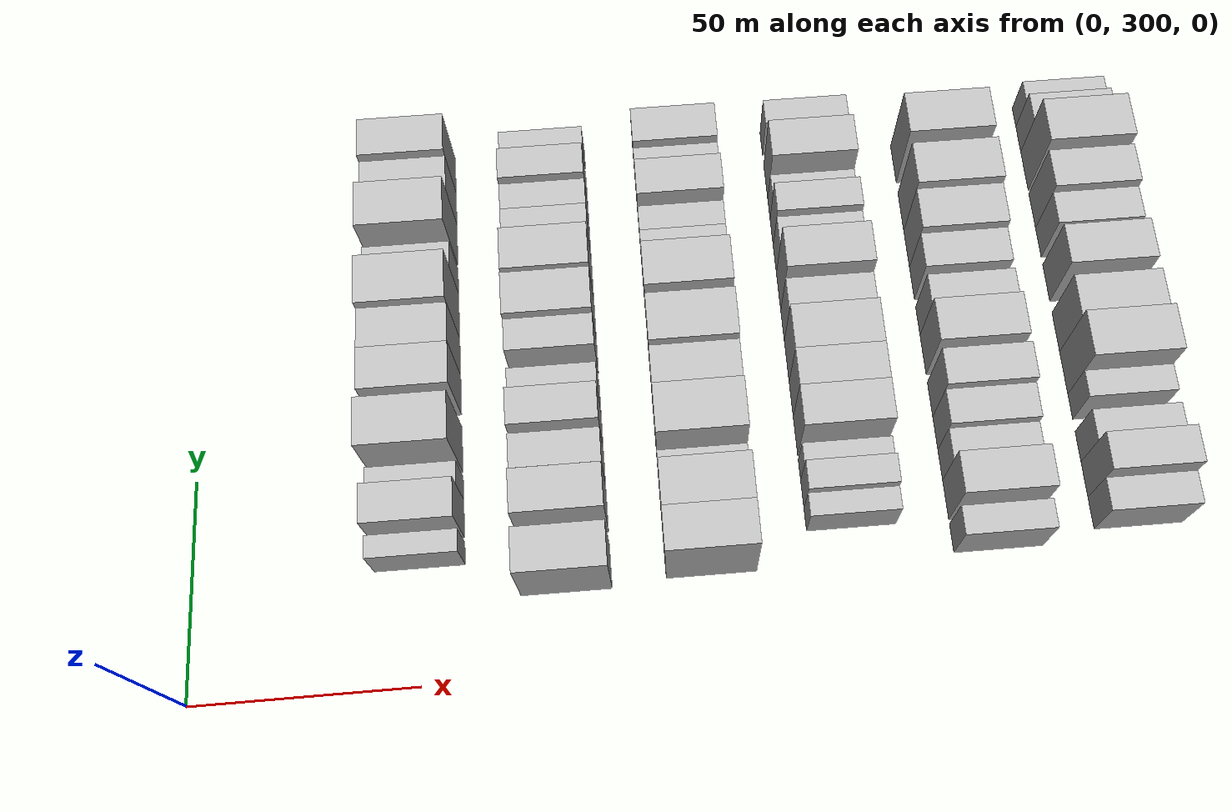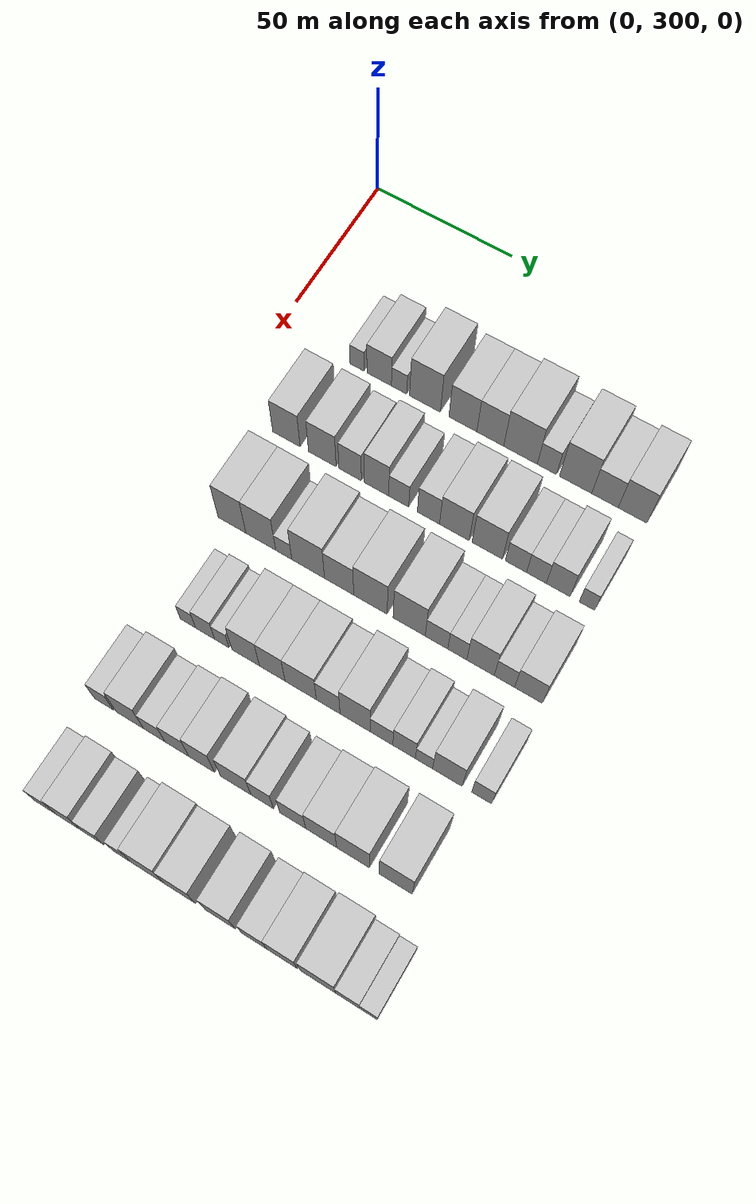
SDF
<sdf version="1.6">
 <world name="default">
  <model name="building_96">
   <static>1</static>
   <pose>50.0000 328.5614 0 0.000000 0.000000 0.000000</pose>
   <link name="link">
    <pose>0 0 6.00 0 0 0</pose>
    <collision name="collision"><geometry><box><size>20.0000 5.0718 12.0000</size></box></geometry></collision>
    <visual name="visual">
     <cast_shadows>0</cast_shadows>
     <geometry><box><size>20.0000 5.0718 12.0000</size></box></geometry>
     <material>
      <script>
       <uri>model://HANNAS_wall/materials/scripts</uri>
       <uri>model://HANNAS_wall/materials/textures</uri>
       <name>vrc/HANNAS_wall</name>
      </script>
     </material>
    </visual>
   </link>
  </model>
  <model name="building_97">
   <static>1</static>
   <pose>50.0000 336.4969 0 0.000000 0.000000 0.000000</pose>
   <link name="link">
    <pose>0 0 9.00 0 0 0</pose>
    <collision name="collision"><geometry><box><size>20.0000 8.7992 18.0000</size></box></geometry></collision>
    <visual name="visual">
     <cast_shadows>0</cast_shadows>
     <geometry><box><size>20.0000 8.7992 18.0000</size></box></geometry>
     <material>
      <script>
       <uri>model://HANNAS_wall/materials/scripts</uri>
       <uri>model://HANNAS_wall/materials/textures</uri>
       <name>vrc/HANNAS_wall</name>
      </script>
     </material>
    </visual>
   </link>
  </model>
  <model name="building_98">
   <static>1</static>
   <pose>50.0000 343.6427 0 0.000000 0.000000 0.000000</pose>
   <link name="link">
    <pose>0 0 6.00 0 0 0</pose>
    <collision name="collision"><geometry><box><size>20.0000 5.4924 12.0000</size></box></geometry></collision>
    <visual name="visual">
     <cast_shadows>0</cast_shadows>
     <geometry><box><size>20.0000 5.4924 12.0000</size></box></geometry>
     <material>
      <script>
       <uri>model://HANNAS_wall/materials/scripts</uri>
       <uri>model://HANNAS_wall/materials/textures</uri>
       <name>vrc/HANNAS_wall</name>
      </script>
     </material>
    </visual>
   </link>
  </model>
  <model name="building_99">
   <static>1</static>
   <pose>50.0000 352.8549 0 0.000000 0.000000 0.000000</pose>
   <link name="link">
    <pose>0 0 12.00 0 0 0</pose>
    <collision name="collision"><geometry><box><size>20.0000 10.9319 24.0000</size></box></geometry></collision>
    <visual name="visual">
     <cast_shadows>0</cast_shadows>
     <geometry><box><size>20.0000 10.9319 24.0000</size></box></geometry>
     <material>
      <script>
       <uri>model://HANNAS_wall/materials/scripts</uri>
       <uri>model://HANNAS_wall/materials/textures</uri>
       <name>vrc/HANNAS_wall</name>
      </script>
     </material>
    </visual>
   </link>
  </model>
  <model name="building_100">
   <static>1</static>
   <pose>50.0000 366.2099 0 0.000000 0.000000 0.000000</pose>
   <link name="link">
    <pose>0 0 10.50 0 0 0</pose>
    <collision name="collision"><geometry><box><size>20.0000 9.7782 21.0000</size></box></geometry></collision>
    <visual name="visual">
     <cast_shadows>0</cast_shadows>
     <geometry><box><size>20.0000 9.7782 21.0000</size></box></geometry>
     <material>
      <script>
       <uri>model://HANNAS_wall/materials/scripts</uri>
       <uri>model://HANNAS_wall/materials/textures</uri>
       <name>vrc/HANNAS_wall</name>
      </script>
     </material>
    </visual>
   </link>
  </model>
  <model name="building_101">
   <static>1</static>
   <pose>50.0000 375.7798 0 0.000000 0.000000 0.000000</pose>
   <link name="link">
    <pose>0 0 10.50 0 0 0</pose>
    <collision name="collision"><geometry><box><size>20.0000 9.3616 21.0000</size></box></geometry></collision>
    <visual name="visual">
     <cast_shadows>0</cast_shadows>
     <geometry><box><size>20.0000 9.3616 21.0000</size></box></geometry>
     <material>
      <script>
       <uri>model://HANNAS_wall/materials/scripts</uri>
       <uri>model://HANNAS_wall/materials/textures</uri>
       <name>vrc/HANNAS_wall</name>
      </script>
     </material>
    </visual>
   </link>
  </model>
  <model name="building_102">
   <static>1</static>
   <pose>50.0000 386.2458 0 0.000000 0.000000 0.000000</pose>
   <link name="link">
    <pose>0 0 12.00 0 0 0</pose>
    <collision name="collision"><geometry><box><size>20.0000 11.5703 24.0000</size></box></geometry></collision>
    <visual name="visual">
     <cast_shadows>0</cast_shadows>
     <geometry><box><size>20.0000 11.5703 24.0000</size></box></geometry>
     <material>
      <script>
       <uri>model://HANNAS_wall/materials/scripts</uri>
       <uri>model://HANNAS_wall/materials/textures</uri>
       <name>vrc/HANNAS_wall</name>
      </script>
     </material>
    </visual>
   </link>
  </model>
  <model name="building_103">
   <static>1</static>
   <pose>50.0000 395.3096 0 0.000000 0.000000 0.000000</pose>
   <link name="link">
    <pose>0 0 7.50 0 0 0</pose>
    <collision name="collision"><geometry><box><size>20.0000 6.5574 15.0000</size></box></geometry></collision>
    <visual name="visual">
     <cast_shadows>0</cast_shadows>
     <geometry><box><size>20.0000 6.5574 15.0000</size></box></geometry>
     <material>
      <script>
       <uri>model://HANNAS_wall/materials/scripts</uri>
       <uri>model://HANNAS_wall/materials/textures</uri>
       <name>vrc/HANNAS_wall</name>
      </script>
     </material>
    </visual>
   </link>
  </model>
  <model name="building_104">
   <static>1</static>
   <pose>50.0000 405.0496 0 0.000000 0.000000 0.000000</pose>
   <link name="link">
    <pose>0 0 12.00 0 0 0</pose>
    <collision name="collision"><geometry><box><size>20.0000 10.9226 24.0000</size></box></geometry></collision>
    <visual name="visual">
     <cast_shadows>0</cast_shadows>
     <geometry><box><size>20.0000 10.9226 24.0000</size></box></geometry>
     <material>
      <script>
       <uri>model://HANNAS_wall/materials/scripts</uri>
       <uri>model://HANNAS_wall/materials/textures</uri>
       <name>vrc/HANNAS_wall</name>
      </script>
     </material>
    </visual>
   </link>
  </model>
  <model name="building_105">
   <static>1</static>
   <pose>50.0000 414.9440 0 0.000000 0.000000 0.000000</pose>
   <link name="link">
    <pose>0 0 9.00 0 0 0</pose>
    <collision name="collision"><geometry><box><size>20.0000 8.8663 18.0000</size></box></geometry></collision>
    <visual name="visual">
     <cast_shadows>0</cast_shadows>
     <geometry><box><size>20.0000 8.8663 18.0000</size></box></geometry>
     <material>
      <script>
       <uri>model://HANNAS_wall/materials/scripts</uri>
       <uri>model://HANNAS_wall/materials/textures</uri>
       <name>vrc/HANNAS_wall</name>
      </script>
     </material>
    </visual>
   </link>
  </model>
  <model name="building_106">
   <static>1</static>
   <pose>50.0000 424.1476 0 0.000000 0.000000 0.000000</pose>
   <link name="link">
    <pose>0 0 10.50 0 0 0</pose>
    <collision name="collision"><geometry><box><size>20.0000 9.5408 21.0000</size></box></geometry></collision>
    <visual name="visual">
     <cast_shadows>0</cast_shadows>
     <geometry><box><size>20.0000 9.5408 21.0000</size></box></geometry>
     <material>
      <script>
       <uri>model://HANNAS_wall/materials/scripts</uri>
       <uri>model://HANNAS_wall/materials/textures</uri>
       <name>vrc/HANNAS_wall</name>
      </script>
     </material>
    </visual>
   </link>
  </model>
  <model name="building_213">
   <static>1</static>
   <pose>82.0000 322.9913 0 0.000000 0.000000 0.000000</pose>
   <link name="link">
    <pose>0 0 10.50 0 0 0</pose>
    <collision name="collision"><geometry><box><size>20.0000 9.8249 21.0000</size></box></geometry></collision>
    <visual name="visual">
     <cast_shadows>0</cast_shadows>
     <geometry><box><size>20.0000 9.8249 21.0000</size></box></geometry>
     <material>
      <script>
       <uri>model://HANNAS_wall/materials/scripts</uri>
       <uri>model://HANNAS_wall/materials/textures</uri>
       <name>vrc/HANNAS_wall</name>
      </script>
     </material>
    </visual>
   </link>
  </model>
  <model name="building_214">
   <static>1</static>
   <pose>82.0000 335.7904 0 0.000000 0.000000 0.000000</pose>
   <link name="link">
    <pose>0 0 10.50 0 0 0</pose>
    <collision name="collision"><geometry><box><size>20.0000 9.7733 21.0000</size></box></geometry></collision>
    <visual name="visual">
     <cast_shadows>0</cast_shadows>
     <geometry><box><size>20.0000 9.7733 21.0000</size></box></geometry>
     <material>
      <script>
       <uri>model://HANNAS_wall/materials/scripts</uri>
       <uri>model://HANNAS_wall/materials/textures</uri>
       <name>vrc/HANNAS_wall</name>
      </script>
     </material>
    </visual>
   </link>
  </model>
  <model name="building_215">
   <static>1</static>
   <pose>82.0000 345.6096 0 0.000000 0.000000 0.000000</pose>
   <link name="link">
    <pose>0 0 9.00 0 0 0</pose>
    <collision name="collision"><geometry><box><size>20.0000 7.8650 18.0000</size></box></geometry></collision>
    <visual name="visual">
     <cast_shadows>0</cast_shadows>
     <geometry><box><size>20.0000 7.8650 18.0000</size></box></geometry>
     <material>
      <script>
       <uri>model://HANNAS_wall/materials/scripts</uri>
       <uri>model://HANNAS_wall/materials/textures</uri>
       <name>vrc/HANNAS_wall</name>
      </script>
     </material>
    </visual>
   </link>
  </model>
  <model name="building_216">
   <static>1</static>
   <pose>82.0000 354.7925 0 0.000000 0.000000 0.000000</pose>
   <link name="link">
    <pose>0 0 10.50 0 0 0</pose>
    <collision name="collision"><geometry><box><size>20.0000 8.5009 21.0000</size></box></geometry></collision>
    <visual name="visual">
     <cast_shadows>0</cast_shadows>
     <geometry><box><size>20.0000 8.5009 21.0000</size></box></geometry>
     <material>
      <script>
       <uri>model://HANNAS_wall/materials/scripts</uri>
       <uri>model://HANNAS_wall/materials/textures</uri>
       <name>vrc/HANNAS_wall</name>
      </script>
     </material>
    </visual>
   </link>
  </model>
  <model name="building_217">
   <static>1</static>
   <pose>82.0000 362.5088 0 0.000000 0.000000 0.000000</pose>
   <link name="link">
    <pose>0 0 7.50 0 0 0</pose>
    <collision name="collision"><geometry><box><size>20.0000 6.9317 15.0000</size></box></geometry></collision>
    <visual name="visual">
     <cast_shadows>0</cast_shadows>
     <geometry><box><size>20.0000 6.9317 15.0000</size></box></geometry>
     <material>
      <script>
       <uri>model://HANNAS_wall/materials/scripts</uri>
       <uri>model://HANNAS_wall/materials/textures</uri>
       <name>vrc/HANNAS_wall</name>
      </script>
     </material>
    </visual>
   </link>
  </model>
  <model name="building_218">
   <static>1</static>
   <pose>82.0000 372.7765 0 0.000000 0.000000 0.000000</pose>
   <link name="link">
    <pose>0 0 9.00 0 0 0</pose>
    <collision name="collision"><geometry><box><size>20.0000 7.6037 18.0000</size></box></geometry></collision>
    <visual name="visual">
     <cast_shadows>0</cast_shadows>
     <geometry><box><size>20.0000 7.6037 18.0000</size></box></geometry>
     <material>
      <script>
       <uri>model://HANNAS_wall/materials/scripts</uri>
       <uri>model://HANNAS_wall/materials/textures</uri>
       <name>vrc/HANNAS_wall</name>
      </script>
     </material>
    </visual>
   </link>
  </model>
  <model name="building_219">
   <static>1</static>
   <pose>82.0000 381.6129 0 0.000000 0.000000 0.000000</pose>
   <link name="link">
    <pose>0 0 10.50 0 0 0</pose>
    <collision name="collision"><geometry><box><size>20.0000 10.0691 21.0000</size></box></geometry></collision>
    <visual name="visual">
     <cast_shadows>0</cast_shadows>
     <geometry><box><size>20.0000 10.0691 21.0000</size></box></geometry>
     <material>
      <script>
       <uri>model://HANNAS_wall/materials/scripts</uri>
       <uri>model://HANNAS_wall/materials/textures</uri>
       <name>vrc/HANNAS_wall</name>
      </script>
     </material>
    </visual>
   </link>
  </model>
  <model name="building_220">
   <static>1</static>
   <pose>82.0000 392.7573 0 0.000000 0.000000 0.000000</pose>
   <link name="link">
    <pose>0 0 10.50 0 0 0</pose>
    <collision name="collision"><geometry><box><size>20.0000 10.2198 21.0000</size></box></geometry></collision>
    <visual name="visual">
     <cast_shadows>0</cast_shadows>
     <geometry><box><size>20.0000 10.2198 21.0000</size></box></geometry>
     <material>
      <script>
       <uri>model://HANNAS_wall/materials/scripts</uri>
       <uri>model://HANNAS_wall/materials/textures</uri>
       <name>vrc/HANNAS_wall</name>
      </script>
     </material>
    </visual>
   </link>
  </model>
  <model name="building_221">
   <static>1</static>
   <pose>82.0000 402.3984 0 0.000000 0.000000 0.000000</pose>
   <link name="link">
    <pose>0 0 7.50 0 0 0</pose>
    <collision name="collision"><geometry><box><size>20.0000 7.0624 15.0000</size></box></geometry></collision>
    <visual name="visual">
     <cast_shadows>0</cast_shadows>
     <geometry><box><size>20.0000 7.0624 15.0000</size></box></geometry>
     <material>
      <script>
       <uri>model://HANNAS_wall/materials/scripts</uri>
       <uri>model://HANNAS_wall/materials/textures</uri>
       <name>vrc/HANNAS_wall</name>
      </script>
     </material>
    </visual>
   </link>
  </model>
  <model name="building_222">
   <static>1</static>
   <pose>82.0000 409.2052 0 0.000000 0.000000 0.000000</pose>
   <link name="link">
    <pose>0 0 7.50 0 0 0</pose>
    <collision name="collision"><geometry><box><size>20.0000 6.5512 15.0000</size></box></geometry></collision>
    <visual name="visual">
     <cast_shadows>0</cast_shadows>
     <geometry><box><size>20.0000 6.5512 15.0000</size></box></geometry>
     <material>
      <script>
       <uri>model://HANNAS_wall/materials/scripts</uri>
       <uri>model://HANNAS_wall/materials/textures</uri>
       <name>vrc/HANNAS_wall</name>
      </script>
     </material>
    </visual>
   </link>
  </model>
  <model name="building_223">
   <static>1</static>
   <pose>82.0000 416.3922 0 0.000000 0.000000 0.000000</pose>
   <link name="link">
    <pose>0 0 9.00 0 0 0</pose>
    <collision name="collision"><geometry><box><size>20.0000 7.8230 18.0000</size></box></geometry></collision>
    <visual name="visual">
     <cast_shadows>0</cast_shadows>
     <geometry><box><size>20.0000 7.8230 18.0000</size></box></geometry>
     <material>
      <script>
       <uri>model://HANNAS_wall/materials/scripts</uri>
       <uri>model://HANNAS_wall/materials/textures</uri>
       <name>vrc/HANNAS_wall</name>
      </script>
     </material>
    </visual>
   </link>
  </model>
  <model name="building_224">
   <static>1</static>
   <pose>82.0000 425.8420 0 0.000000 0.000000 0.000000</pose>
   <link name="link">
    <pose>0 0 6.00 0 0 0</pose>
    <collision name="collision"><geometry><box><size>20.0000 5.0765 12.0000</size></box></geometry></collision>
    <visual name="visual">
     <cast_shadows>0</cast_shadows>
     <geometry><box><size>20.0000 5.0765 12.0000</size></box></geometry>
     <material>
      <script>
       <uri>model://HANNAS_wall/materials/scripts</uri>
       <uri>model://HANNAS_wall/materials/textures</uri>
       <name>vrc/HANNAS_wall</name>
      </script>
     </material>
    </visual>
   </link>
  </model>
  <model name="building_330">
   <static>1</static>
   <pose>114.0000 324.2688 0 0.000000 0.000000 0.000000</pose>
   <link name="link">
    <pose>0 0 12.00 0 0 0</pose>
    <collision name="collision"><geometry><box><size>20.0000 9.8018 24.0000</size></box></geometry></collision>
    <visual name="visual">
     <cast_shadows>0</cast_shadows>
     <geometry><box><size>20.0000 9.8018 24.0000</size></box></geometry>
     <material>
      <script>
       <uri>model://HANNAS_wall/materials/scripts</uri>
       <uri>model://HANNAS_wall/materials/textures</uri>
       <name>vrc/HANNAS_wall</name>
      </script>
     </material>
    </visual>
   </link>
  </model>
  <model name="building_331">
   <static>1</static>
   <pose>114.0000 334.3821 0 0.000000 0.000000 0.000000</pose>
   <link name="link">
    <pose>0 0 12.00 0 0 0</pose>
    <collision name="collision"><geometry><box><size>20.0000 10.4248 24.0000</size></box></geometry></collision>
    <visual name="visual">
     <cast_shadows>0</cast_shadows>
     <geometry><box><size>20.0000 10.4248 24.0000</size></box></geometry>
     <material>
      <script>
       <uri>model://HANNAS_wall/materials/scripts</uri>
       <uri>model://HANNAS_wall/materials/textures</uri>
       <name>vrc/HANNAS_wall</name>
      </script>
     </material>
    </visual>
   </link>
  </model>
  <model name="building_332">
   <static>1</static>
   <pose>114.0000 342.3908 0 0.000000 0.000000 0.000000</pose>
   <link name="link">
    <pose>0 0 6.00 0 0 0</pose>
    <collision name="collision"><geometry><box><size>20.0000 5.5927 12.0000</size></box></geometry></collision>
    <visual name="visual">
     <cast_shadows>0</cast_shadows>
     <geometry><box><size>20.0000 5.5927 12.0000</size></box></geometry>
     <material>
      <script>
       <uri>model://HANNAS_wall/materials/scripts</uri>
       <uri>model://HANNAS_wall/materials/textures</uri>
       <name>vrc/HANNAS_wall</name>
      </script>
     </material>
    </visual>
   </link>
  </model>
  <model name="building_333">
   <static>1</static>
   <pose>114.0000 350.8162 0 0.000000 0.000000 0.000000</pose>
   <link name="link">
    <pose>0 0 12.00 0 0 0</pose>
    <collision name="collision"><geometry><box><size>20.0000 11.2581 24.0000</size></box></geometry></collision>
    <visual name="visual">
     <cast_shadows>0</cast_shadows>
     <geometry><box><size>20.0000 11.2581 24.0000</size></box></geometry>
     <material>
      <script>
       <uri>model://HANNAS_wall/materials/scripts</uri>
       <uri>model://HANNAS_wall/materials/textures</uri>
       <name>vrc/HANNAS_wall</name>
      </script>
     </material>
    </visual>
   </link>
  </model>
  <model name="building_334">
   <static>1</static>
   <pose>114.0000 361.4116 0 0.000000 0.000000 0.000000</pose>
   <link name="link">
    <pose>0 0 10.50 0 0 0</pose>
    <collision name="collision"><geometry><box><size>20.0000 9.9327 21.0000</size></box></geometry></collision>
    <visual name="visual">
     <cast_shadows>0</cast_shadows>
     <geometry><box><size>20.0000 9.9327 21.0000</size></box></geometry>
     <material>
      <script>
       <uri>model://HANNAS_wall/materials/scripts</uri>
       <uri>model://HANNAS_wall/materials/textures</uri>
       <name>vrc/HANNAS_wall</name>
      </script>
     </material>
    </visual>
   </link>
  </model>
  <model name="building_335">
   <static>1</static>
   <pose>114.0000 372.0153 0 0.000000 0.000000 0.000000</pose>
   <link name="link">
    <pose>0 0 12.00 0 0 0</pose>
    <collision name="collision"><geometry><box><size>20.0000 11.2747 24.0000</size></box></geometry></collision>
    <visual name="visual">
     <cast_shadows>0</cast_shadows>
     <geometry><box><size>20.0000 11.2747 24.0000</size></box></geometry>
     <material>
      <script>
       <uri>model://HANNAS_wall/materials/scripts</uri>
       <uri>model://HANNAS_wall/materials/textures</uri>
       <name>vrc/HANNAS_wall</name>
      </script>
     </material>
    </visual>
   </link>
  </model>
  <model name="building_336">
   <static>1</static>
   <pose>114.0000 385.0222 0 0.000000 0.000000 0.000000</pose>
   <link name="link">
    <pose>0 0 12.00 0 0 0</pose>
    <collision name="collision"><geometry><box><size>20.0000 10.7391 24.0000</size></box></geometry></collision>
    <visual name="visual">
     <cast_shadows>0</cast_shadows>
     <geometry><box><size>20.0000 10.7391 24.0000</size></box></geometry>
     <material>
      <script>
       <uri>model://HANNAS_wall/materials/scripts</uri>
       <uri>model://HANNAS_wall/materials/textures</uri>
       <name>vrc/HANNAS_wall</name>
      </script>
     </material>
    </visual>
   </link>
  </model>
  <model name="building_337">
   <static>1</static>
   <pose>114.0000 394.1217 0 0.000000 0.000000 0.000000</pose>
   <link name="link">
    <pose>0 0 7.50 0 0 0</pose>
    <collision name="collision"><geometry><box><size>20.0000 7.4599 15.0000</size></box></geometry></collision>
    <visual name="visual">
     <cast_shadows>0</cast_shadows>
     <geometry><box><size>20.0000 7.4599 15.0000</size></box></geometry>
     <material>
      <script>
       <uri>model://HANNAS_wall/materials/scripts</uri>
       <uri>model://HANNAS_wall/materials/textures</uri>
       <name>vrc/HANNAS_wall</name>
      </script>
     </material>
    </visual>
   </link>
  </model>
  <model name="building_338">
   <static>1</static>
   <pose>114.0000 400.9612 0 0.000000 0.000000 0.000000</pose>
   <link name="link">
    <pose>0 0 7.50 0 0 0</pose>
    <collision name="collision"><geometry><box><size>20.0000 6.2192 15.0000</size></box></geometry></collision>
    <visual name="visual">
     <cast_shadows>0</cast_shadows>
     <geometry><box><size>20.0000 6.2192 15.0000</size></box></geometry>
     <material>
      <script>
       <uri>model://HANNAS_wall/materials/scripts</uri>
       <uri>model://HANNAS_wall/materials/textures</uri>
       <name>vrc/HANNAS_wall</name>
      </script>
     </material>
    </visual>
   </link>
  </model>
  <model name="building_339">
   <static>1</static>
   <pose>114.0000 408.5645 0 0.000000 0.000000 0.000000</pose>
   <link name="link">
    <pose>0 0 10.50 0 0 0</pose>
    <collision name="collision"><geometry><box><size>20.0000 8.9873 21.0000</size></box></geometry></collision>
    <visual name="visual">
     <cast_shadows>0</cast_shadows>
     <geometry><box><size>20.0000 8.9873 21.0000</size></box></geometry>
     <material>
      <script>
       <uri>model://HANNAS_wall/materials/scripts</uri>
       <uri>model://HANNAS_wall/materials/textures</uri>
       <name>vrc/HANNAS_wall</name>
      </script>
     </material>
    </visual>
   </link>
  </model>
  <model name="building_340">
   <static>1</static>
   <pose>114.0000 416.3434 0 0.000000 0.000000 0.000000</pose>
   <link name="link">
    <pose>0 0 7.50 0 0 0</pose>
    <collision name="collision"><geometry><box><size>20.0000 6.5706 15.0000</size></box></geometry></collision>
    <visual name="visual">
     <cast_shadows>0</cast_shadows>
     <geometry><box><size>20.0000 6.5706 15.0000</size></box></geometry>
     <material>
      <script>
       <uri>model://HANNAS_wall/materials/scripts</uri>
       <uri>model://HANNAS_wall/materials/textures</uri>
       <name>vrc/HANNAS_wall</name>
      </script>
     </material>
    </visual>
   </link>
  </model>
  <model name="building_341">
   <static>1</static>
   <pose>114.0000 424.1029 0 0.000000 0.000000 0.000000</pose>
   <link name="link">
    <pose>0 0 9.00 0 0 0</pose>
    <collision name="collision"><geometry><box><size>20.0000 8.9482 18.0000</size></box></geometry></collision>
    <visual name="visual">
     <cast_shadows>0</cast_shadows>
     <geometry><box><size>20.0000 8.9482 18.0000</size></box></geometry>
     <material>
      <script>
       <uri>model://HANNAS_wall/materials/scripts</uri>
       <uri>model://HANNAS_wall/materials/textures</uri>
       <name>vrc/HANNAS_wall</name>
      </script>
     </material>
    </visual>
   </link>
  </model>
  <model name="building_447">
   <static>1</static>
   <pose>146.0000 330.1460 0 0.000000 0.000000 0.000000</pose>
   <link name="link">
    <pose>0 0 6.00 0 0 0</pose>
    <collision name="collision"><geometry><box><size>20.0000 5.2417 12.0000</size></box></geometry></collision>
    <visual name="visual">
     <cast_shadows>0</cast_shadows>
     <geometry><box><size>20.0000 5.2417 12.0000</size></box></geometry>
     <material>
      <script>
       <uri>model://HANNAS_wall/materials/scripts</uri>
       <uri>model://HANNAS_wall/materials/textures</uri>
       <name>vrc/HANNAS_wall</name>
      </script>
     </material>
    </visual>
   </link>
  </model>
  <model name="building_448">
   <static>1</static>
   <pose>146.0000 336.0277 0 0.000000 0.000000 0.000000</pose>
   <link name="link">
    <pose>0 0 7.50 0 0 0</pose>
    <collision name="collision"><geometry><box><size>20.0000 6.5218 15.0000</size></box></geometry></collision>
    <visual name="visual">
     <cast_shadows>0</cast_shadows>
     <geometry><box><size>20.0000 6.5218 15.0000</size></box></geometry>
     <material>
      <script>
       <uri>model://HANNAS_wall/materials/scripts</uri>
       <uri>model://HANNAS_wall/materials/textures</uri>
       <name>vrc/HANNAS_wall</name>
      </script>
     </material>
    </visual>
   </link>
  </model>
  <model name="building_449">
   <static>1</static>
   <pose>146.0000 341.7600 0 0.000000 0.000000 0.000000</pose>
   <link name="link">
    <pose>0 0 6.00 0 0 0</pose>
    <collision name="collision"><geometry><box><size>20.0000 4.9428 12.0000</size></box></geometry></collision>
    <visual name="visual">
     <cast_shadows>0</cast_shadows>
     <geometry><box><size>20.0000 4.9428 12.0000</size></box></geometry>
     <material>
      <script>
       <uri>model://HANNAS_wall/materials/scripts</uri>
       <uri>model://HANNAS_wall/materials/textures</uri>
       <name>vrc/HANNAS_wall</name>
      </script>
     </material>
    </visual>
   </link>
  </model>
  <model name="building_450">
   <static>1</static>
   <pose>146.0000 349.9038 0 0.000000 0.000000 0.000000</pose>
   <link name="link">
    <pose>0 0 10.50 0 0 0</pose>
    <collision name="collision"><geometry><box><size>20.0000 9.3448 21.0000</size></box></geometry></collision>
    <visual name="visual">
     <cast_shadows>0</cast_shadows>
     <geometry><box><size>20.0000 9.3448 21.0000</size></box></geometry>
     <material>
      <script>
       <uri>model://HANNAS_wall/materials/scripts</uri>
       <uri>model://HANNAS_wall/materials/textures</uri>
       <name>vrc/HANNAS_wall</name>
      </script>
     </material>
    </visual>
   </link>
  </model>
  <model name="building_451">
   <static>1</static>
   <pose>146.0000 358.8920 0 0.000000 0.000000 0.000000</pose>
   <link name="link">
    <pose>0 0 10.50 0 0 0</pose>
    <collision name="collision"><geometry><box><size>20.0000 8.6317 21.0000</size></box></geometry></collision>
    <visual name="visual">
     <cast_shadows>0</cast_shadows>
     <geometry><box><size>20.0000 8.6317 21.0000</size></box></geometry>
     <material>
      <script>
       <uri>model://HANNAS_wall/materials/scripts</uri>
       <uri>model://HANNAS_wall/materials/textures</uri>
       <name>vrc/HANNAS_wall</name>
      </script>
     </material>
    </visual>
   </link>
  </model>
  <model name="building_452">
   <static>1</static>
   <pose>146.0000 368.4290 0 0.000000 0.000000 0.000000</pose>
   <link name="link">
    <pose>0 0 10.50 0 0 0</pose>
    <collision name="collision"><geometry><box><size>20.0000 10.4422 21.0000</size></box></geometry></collision>
    <visual name="visual">
     <cast_shadows>0</cast_shadows>
     <geometry><box><size>20.0000 10.4422 21.0000</size></box></geometry>
     <material>
      <script>
       <uri>model://HANNAS_wall/materials/scripts</uri>
       <uri>model://HANNAS_wall/materials/textures</uri>
       <name>vrc/HANNAS_wall</name>
      </script>
     </material>
    </visual>
   </link>
  </model>
  <model name="building_453">
   <static>1</static>
   <pose>146.0000 377.5594 0 0.000000 0.000000 0.000000</pose>
   <link name="link">
    <pose>0 0 9.00 0 0 0</pose>
    <collision name="collision"><geometry><box><size>20.0000 7.8187 18.0000</size></box></geometry></collision>
    <visual name="visual">
     <cast_shadows>0</cast_shadows>
     <geometry><box><size>20.0000 7.8187 18.0000</size></box></geometry>
     <material>
      <script>
       <uri>model://HANNAS_wall/materials/scripts</uri>
       <uri>model://HANNAS_wall/materials/textures</uri>
       <name>vrc/HANNAS_wall</name>
      </script>
     </material>
    </visual>
   </link>
  </model>
  <model name="building_454">
   <static>1</static>
   <pose>146.0000 386.3752 0 0.000000 0.000000 0.000000</pose>
   <link name="link">
    <pose>0 0 12.00 0 0 0</pose>
    <collision name="collision"><geometry><box><size>20.0000 9.8129 24.0000</size></box></geometry></collision>
    <visual name="visual">
     <cast_shadows>0</cast_shadows>
     <geometry><box><size>20.0000 9.8129 24.0000</size></box></geometry>
     <material>
      <script>
       <uri>model://HANNAS_wall/materials/scripts</uri>
       <uri>model://HANNAS_wall/materials/textures</uri>
       <name>vrc/HANNAS_wall</name>
      </script>
     </material>
    </visual>
   </link>
  </model>
  <model name="building_455">
   <static>1</static>
   <pose>146.0000 394.9713 0 0.000000 0.000000 0.000000</pose>
   <link name="link">
    <pose>0 0 7.50 0 0 0</pose>
    <collision name="collision"><geometry><box><size>20.0000 7.3792 15.0000</size></box></geometry></collision>
    <visual name="visual">
     <cast_shadows>0</cast_shadows>
     <geometry><box><size>20.0000 7.3792 15.0000</size></box></geometry>
     <material>
      <script>
       <uri>model://HANNAS_wall/materials/scripts</uri>
       <uri>model://HANNAS_wall/materials/textures</uri>
       <name>vrc/HANNAS_wall</name>
      </script>
     </material>
    </visual>
   </link>
  </model>
  <model name="building_456">
   <static>1</static>
   <pose>146.0000 402.2993 0 0.000000 0.000000 0.000000</pose>
   <link name="link">
    <pose>0 0 9.00 0 0 0</pose>
    <collision name="collision"><geometry><box><size>20.0000 7.2769 18.0000</size></box></geometry></collision>
    <visual name="visual">
     <cast_shadows>0</cast_shadows>
     <geometry><box><size>20.0000 7.2769 18.0000</size></box></geometry>
     <material>
      <script>
       <uri>model://HANNAS_wall/materials/scripts</uri>
       <uri>model://HANNAS_wall/materials/textures</uri>
       <name>vrc/HANNAS_wall</name>
      </script>
     </material>
    </visual>
   </link>
  </model>
  <model name="building_457">
   <static>1</static>
   <pose>146.0000 408.6990 0 0.000000 0.000000 0.000000</pose>
   <link name="link">
    <pose>0 0 6.00 0 0 0</pose>
    <collision name="collision"><geometry><box><size>20.0000 5.5226 12.0000</size></box></geometry></collision>
    <visual name="visual">
     <cast_shadows>0</cast_shadows>
     <geometry><box><size>20.0000 5.5226 12.0000</size></box></geometry>
     <material>
      <script>
       <uri>model://HANNAS_wall/materials/scripts</uri>
       <uri>model://HANNAS_wall/materials/textures</uri>
       <name>vrc/HANNAS_wall</name>
      </script>
     </material>
    </visual>
   </link>
  </model>
  <model name="building_458">
   <static>1</static>
   <pose>146.0000 416.1748 0 0.000000 0.000000 0.000000</pose>
   <link name="link">
    <pose>0 0 10.50 0 0 0</pose>
    <collision name="collision"><geometry><box><size>20.0000 9.4288 21.0000</size></box></geometry></collision>
    <visual name="visual">
     <cast_shadows>0</cast_shadows>
     <geometry><box><size>20.0000 9.4288 21.0000</size></box></geometry>
     <material>
      <script>
       <uri>model://HANNAS_wall/materials/scripts</uri>
       <uri>model://HANNAS_wall/materials/textures</uri>
       <name>vrc/HANNAS_wall</name>
      </script>
     </material>
    </visual>
   </link>
  </model>
  <model name="building_459">
   <static>1</static>
   <pose>146.0000 427.0200 0 0.000000 0.000000 0.000000</pose>
   <link name="link">
    <pose>0 0 7.50 0 0 0</pose>
    <collision name="collision"><geometry><box><size>20.0000 6.2618 15.0000</size></box></geometry></collision>
    <visual name="visual">
     <cast_shadows>0</cast_shadows>
     <geometry><box><size>20.0000 6.2618 15.0000</size></box></geometry>
     <material>
      <script>
       <uri>model://HANNAS_wall/materials/scripts</uri>
       <uri>model://HANNAS_wall/materials/textures</uri>
       <name>vrc/HANNAS_wall</name>
      </script>
     </material>
    </visual>
   </link>
  </model>
  <model name="building_565">
   <static>1</static>
   <pose>178.0000 323.2055 0 0.000000 0.000000 0.000000</pose>
   <link name="link">
    <pose>0 0 7.50 0 0 0</pose>
    <collision name="collision"><geometry><box><size>20.0000 6.5014 15.0000</size></box></geometry></collision>
    <visual name="visual">
     <cast_shadows>0</cast_shadows>
     <geometry><box><size>20.0000 6.5014 15.0000</size></box></geometry>
     <material>
      <script>
       <uri>model://HANNAS_wall/materials/scripts</uri>
       <uri>model://HANNAS_wall/materials/textures</uri>
       <name>vrc/HANNAS_wall</name>
      </script>
     </material>
    </visual>
   </link>
  </model>
  <model name="building_566">
   <static>1</static>
   <pose>178.0000 332.1021 0 0.000000 0.000000 0.000000</pose>
   <link name="link">
    <pose>0 0 10.50 0 0 0</pose>
    <collision name="collision"><geometry><box><size>20.0000 9.2918 21.0000</size></box></geometry></collision>
    <visual name="visual">
     <cast_shadows>0</cast_shadows>
     <geometry><box><size>20.0000 9.2918 21.0000</size></box></geometry>
     <material>
      <script>
       <uri>model://HANNAS_wall/materials/scripts</uri>
       <uri>model://HANNAS_wall/materials/textures</uri>
       <name>vrc/HANNAS_wall</name>
      </script>
     </material>
    </visual>
   </link>
  </model>
  <model name="building_567">
   <static>1</static>
   <pose>178.0000 340.3667 0 0.000000 0.000000 0.000000</pose>
   <link name="link">
    <pose>0 0 7.50 0 0 0</pose>
    <collision name="collision"><geometry><box><size>20.0000 7.2374 15.0000</size></box></geometry></collision>
    <visual name="visual">
     <cast_shadows>0</cast_shadows>
     <geometry><box><size>20.0000 7.2374 15.0000</size></box></geometry>
     <material>
      <script>
       <uri>model://HANNAS_wall/materials/scripts</uri>
       <uri>model://HANNAS_wall/materials/textures</uri>
       <name>vrc/HANNAS_wall</name>
      </script>
     </material>
    </visual>
   </link>
  </model>
  <model name="building_568">
   <static>1</static>
   <pose>178.0000 347.9973 0 0.000000 0.000000 0.000000</pose>
   <link name="link">
    <pose>0 0 9.00 0 0 0</pose>
    <collision name="collision"><geometry><box><size>20.0000 8.0239 18.0000</size></box></geometry></collision>
    <visual name="visual">
     <cast_shadows>0</cast_shadows>
     <geometry><box><size>20.0000 8.0239 18.0000</size></box></geometry>
     <material>
      <script>
       <uri>model://HANNAS_wall/materials/scripts</uri>
       <uri>model://HANNAS_wall/materials/textures</uri>
       <name>vrc/HANNAS_wall</name>
      </script>
     </material>
    </visual>
   </link>
  </model>
  <model name="building_569">
   <static>1</static>
   <pose>178.0000 356.2493 0 0.000000 0.000000 0.000000</pose>
   <link name="link">
    <pose>0 0 10.50 0 0 0</pose>
    <collision name="collision"><geometry><box><size>20.0000 8.4800 21.0000</size></box></geometry></collision>
    <visual name="visual">
     <cast_shadows>0</cast_shadows>
     <geometry><box><size>20.0000 8.4800 21.0000</size></box></geometry>
     <material>
      <script>
       <uri>model://HANNAS_wall/materials/scripts</uri>
       <uri>model://HANNAS_wall/materials/textures</uri>
       <name>vrc/HANNAS_wall</name>
      </script>
     </material>
    </visual>
   </link>
  </model>
  <model name="building_570">
   <static>1</static>
   <pose>178.0000 367.4858 0 0.000000 0.000000 0.000000</pose>
   <link name="link">
    <pose>0 0 10.50 0 0 0</pose>
    <collision name="collision"><geometry><box><size>20.0000 9.9931 21.0000</size></box></geometry></collision>
    <visual name="visual">
     <cast_shadows>0</cast_shadows>
     <geometry><box><size>20.0000 9.9931 21.0000</size></box></geometry>
     <material>
      <script>
       <uri>model://HANNAS_wall/materials/scripts</uri>
       <uri>model://HANNAS_wall/materials/textures</uri>
       <name>vrc/HANNAS_wall</name>
      </script>
     </material>
    </visual>
   </link>
  </model>
  <model name="building_571">
   <static>1</static>
   <pose>178.0000 376.1350 0 0.000000 0.000000 0.000000</pose>
   <link name="link">
    <pose>0 0 9.00 0 0 0</pose>
    <collision name="collision"><geometry><box><size>20.0000 7.3053 18.0000</size></box></geometry></collision>
    <visual name="visual">
     <cast_shadows>0</cast_shadows>
     <geometry><box><size>20.0000 7.3053 18.0000</size></box></geometry>
     <material>
      <script>
       <uri>model://HANNAS_wall/materials/scripts</uri>
       <uri>model://HANNAS_wall/materials/textures</uri>
       <name>vrc/HANNAS_wall</name>
      </script>
     </material>
    </visual>
   </link>
  </model>
  <model name="building_572">
   <static>1</static>
   <pose>178.0000 385.9834 0 0.000000 0.000000 0.000000</pose>
   <link name="link">
    <pose>0 0 9.00 0 0 0</pose>
    <collision name="collision"><geometry><box><size>20.0000 8.3914 18.0000</size></box></geometry></collision>
    <visual name="visual">
     <cast_shadows>0</cast_shadows>
     <geometry><box><size>20.0000 8.3914 18.0000</size></box></geometry>
     <material>
      <script>
       <uri>model://HANNAS_wall/materials/scripts</uri>
       <uri>model://HANNAS_wall/materials/textures</uri>
       <name>vrc/HANNAS_wall</name>
      </script>
     </material>
    </visual>
   </link>
  </model>
  <model name="building_573">
   <static>1</static>
   <pose>178.0000 395.1303 0 0.000000 0.000000 0.000000</pose>
   <link name="link">
    <pose>0 0 10.50 0 0 0</pose>
    <collision name="collision"><geometry><box><size>20.0000 9.9024 21.0000</size></box></geometry></collision>
    <visual name="visual">
     <cast_shadows>0</cast_shadows>
     <geometry><box><size>20.0000 9.9024 21.0000</size></box></geometry>
     <material>
      <script>
       <uri>model://HANNAS_wall/materials/scripts</uri>
       <uri>model://HANNAS_wall/materials/textures</uri>
       <name>vrc/HANNAS_wall</name>
      </script>
     </material>
    </visual>
   </link>
  </model>
  <model name="building_574">
   <static>1</static>
   <pose>178.0000 405.2615 0 0.000000 0.000000 0.000000</pose>
   <link name="link">
    <pose>0 0 12.00 0 0 0</pose>
    <collision name="collision"><geometry><box><size>20.0000 10.3599 24.0000</size></box></geometry></collision>
    <visual name="visual">
     <cast_shadows>0</cast_shadows>
     <geometry><box><size>20.0000 10.3599 24.0000</size></box></geometry>
     <material>
      <script>
       <uri>model://HANNAS_wall/materials/scripts</uri>
       <uri>model://HANNAS_wall/materials/textures</uri>
       <name>vrc/HANNAS_wall</name>
      </script>
     </material>
    </visual>
   </link>
  </model>
  <model name="building_575">
   <static>1</static>
   <pose>178.0000 418.6090 0 0.000000 0.000000 0.000000</pose>
   <link name="link">
    <pose>0 0 12.00 0 0 0</pose>
    <collision name="collision"><geometry><box><size>20.0000 10.3350 24.0000</size></box></geometry></collision>
    <visual name="visual">
     <cast_shadows>0</cast_shadows>
     <geometry><box><size>20.0000 10.3350 24.0000</size></box></geometry>
     <material>
      <script>
       <uri>model://HANNAS_wall/materials/scripts</uri>
       <uri>model://HANNAS_wall/materials/textures</uri>
       <name>vrc/HANNAS_wall</name>
      </script>
     </material>
    </visual>
   </link>
  </model>
  <model name="building_681">
   <static>1</static>
   <pose>210.0000 326.4078 0 0.000000 0.000000 0.000000</pose>
   <link name="link">
    <pose>0 0 7.50 0 0 0</pose>
    <collision name="collision"><geometry><box><size>20.0000 7.3604 15.0000</size></box></geometry></collision>
    <visual name="visual">
     <cast_shadows>0</cast_shadows>
     <geometry><box><size>20.0000 7.3604 15.0000</size></box></geometry>
     <material>
      <script>
       <uri>model://HANNAS_wall/materials/scripts</uri>
       <uri>model://HANNAS_wall/materials/textures</uri>
       <name>vrc/HANNAS_wall</name>
      </script>
     </material>
    </visual>
   </link>
  </model>
  <model name="building_682">
   <static>1</static>
   <pose>210.0000 334.2895 0 0.000000 0.000000 0.000000</pose>
   <link name="link">
    <pose>0 0 10.50 0 0 0</pose>
    <collision name="collision"><geometry><box><size>20.0000 8.4030 21.0000</size></box></geometry></collision>
    <visual name="visual">
     <cast_shadows>0</cast_shadows>
     <geometry><box><size>20.0000 8.4030 21.0000</size></box></geometry>
     <material>
      <script>
       <uri>model://HANNAS_wall/materials/scripts</uri>
       <uri>model://HANNAS_wall/materials/textures</uri>
       <name>vrc/HANNAS_wall</name>
      </script>
     </material>
    </visual>
   </link>
  </model>
  <model name="building_683">
   <static>1</static>
   <pose>210.0000 342.1446 0 0.000000 0.000000 0.000000</pose>
   <link name="link">
    <pose>0 0 7.50 0 0 0</pose>
    <collision name="collision"><geometry><box><size>20.0000 7.3073 15.0000</size></box></geometry></collision>
    <visual name="visual">
     <cast_shadows>0</cast_shadows>
     <geometry><box><size>20.0000 7.3073 15.0000</size></box></geometry>
     <material>
      <script>
       <uri>model://HANNAS_wall/materials/scripts</uri>
       <uri>model://HANNAS_wall/materials/textures</uri>
       <name>vrc/HANNAS_wall</name>
      </script>
     </material>
    </visual>
   </link>
  </model>
  <model name="building_684">
   <static>1</static>
   <pose>210.0000 351.8885 0 0.000000 0.000000 0.000000</pose>
   <link name="link">
    <pose>0 0 7.50 0 0 0</pose>
    <collision name="collision"><geometry><box><size>20.0000 6.1805 15.0000</size></box></geometry></collision>
    <visual name="visual">
     <cast_shadows>0</cast_shadows>
     <geometry><box><size>20.0000 6.1805 15.0000</size></box></geometry>
     <material>
      <script>
       <uri>model://HANNAS_wall/materials/scripts</uri>
       <uri>model://HANNAS_wall/materials/textures</uri>
       <name>vrc/HANNAS_wall</name>
      </script>
     </material>
    </visual>
   </link>
  </model>
  <model name="building_685">
   <static>1</static>
   <pose>210.0000 360.2988 0 0.000000 0.000000 0.000000</pose>
   <link name="link">
    <pose>0 0 12.00 0 0 0</pose>
    <collision name="collision"><geometry><box><size>20.0000 10.6400 24.0000</size></box></geometry></collision>
    <visual name="visual">
     <cast_shadows>0</cast_shadows>
     <geometry><box><size>20.0000 10.6400 24.0000</size></box></geometry>
     <material>
      <script>
       <uri>model://HANNAS_wall/materials/scripts</uri>
       <uri>model://HANNAS_wall/materials/textures</uri>
       <name>vrc/HANNAS_wall</name>
      </script>
     </material>
    </visual>
   </link>
  </model>
  <model name="building_686">
   <static>1</static>
   <pose>210.0000 370.6426 0 0.000000 0.000000 0.000000</pose>
   <link name="link">
    <pose>0 0 10.50 0 0 0</pose>
    <collision name="collision"><geometry><box><size>20.0000 10.0475 21.0000</size></box></geometry></collision>
    <visual name="visual">
     <cast_shadows>0</cast_shadows>
     <geometry><box><size>20.0000 10.0475 21.0000</size></box></geometry>
     <material>
      <script>
       <uri>model://HANNAS_wall/materials/scripts</uri>
       <uri>model://HANNAS_wall/materials/textures</uri>
       <name>vrc/HANNAS_wall</name>
      </script>
     </material>
    </visual>
   </link>
  </model>
  <model name="building_687">
   <static>1</static>
   <pose>210.0000 383.4841 0 0.000000 0.000000 0.000000</pose>
   <link name="link">
    <pose>0 0 10.50 0 0 0</pose>
    <collision name="collision"><geometry><box><size>20.0000 9.6355 21.0000</size></box></geometry></collision>
    <visual name="visual">
     <cast_shadows>0</cast_shadows>
     <geometry><box><size>20.0000 9.6355 21.0000</size></box></geometry>
     <material>
      <script>
       <uri>model://HANNAS_wall/materials/scripts</uri>
       <uri>model://HANNAS_wall/materials/textures</uri>
       <name>vrc/HANNAS_wall</name>
      </script>
     </material>
    </visual>
   </link>
  </model>
  <model name="building_688">
   <static>1</static>
   <pose>210.0000 394.2634 0 0.000000 0.000000 0.000000</pose>
   <link name="link">
    <pose>0 0 9.00 0 0 0</pose>
    <collision name="collision"><geometry><box><size>20.0000 7.9230 18.0000</size></box></geometry></collision>
    <visual name="visual">
     <cast_shadows>0</cast_shadows>
     <geometry><box><size>20.0000 7.9230 18.0000</size></box></geometry>
     <material>
      <script>
       <uri>model://HANNAS_wall/materials/scripts</uri>
       <uri>model://HANNAS_wall/materials/textures</uri>
       <name>vrc/HANNAS_wall</name>
      </script>
     </material>
    </visual>
   </link>
  </model>
  <model name="building_689">
   <static>1</static>
   <pose>210.0000 402.9521 0 0.000000 0.000000 0.000000</pose>
   <link name="link">
    <pose>0 0 10.50 0 0 0</pose>
    <collision name="collision"><geometry><box><size>20.0000 9.4545 21.0000</size></box></geometry></collision>
    <visual name="visual">
     <cast_shadows>0</cast_shadows>
     <geometry><box><size>20.0000 9.4545 21.0000</size></box></geometry>
     <material>
      <script>
       <uri>model://HANNAS_wall/materials/scripts</uri>
       <uri>model://HANNAS_wall/materials/textures</uri>
       <name>vrc/HANNAS_wall</name>
      </script>
     </material>
    </visual>
   </link>
  </model>
  <model name="building_690">
   <static>1</static>
   <pose>210.0000 414.0952 0 0.000000 0.000000 0.000000</pose>
   <link name="link">
    <pose>0 0 12.00 0 0 0</pose>
    <collision name="collision"><geometry><box><size>20.0000 10.8316 24.0000</size></box></geometry></collision>
    <visual name="visual">
     <cast_shadows>0</cast_shadows>
     <geometry><box><size>20.0000 10.8316 24.0000</size></box></geometry>
     <material>
      <script>
       <uri>model://HANNAS_wall/materials/scripts</uri>
       <uri>model://HANNAS_wall/materials/textures</uri>
       <name>vrc/HANNAS_wall</name>
      </script>
     </material>
    </visual>
   </link>
  </model>
  <model name="building_691">
   <static>1</static>
   <pose>210.0000 423.1402 0 0.000000 0.000000 0.000000</pose>
   <link name="link">
    <pose>0 0 7.50 0 0 0</pose>
    <collision name="collision"><geometry><box><size>20.0000 7.2583 15.0000</size></box></geometry></collision>
    <visual name="visual">
     <cast_shadows>0</cast_shadows>
     <geometry><box><size>20.0000 7.2583 15.0000</size></box></geometry>
     <material>
      <script>
       <uri>model://HANNAS_wall/materials/scripts</uri>
       <uri>model://HANNAS_wall/materials/textures</uri>
       <name>vrc/HANNAS_wall</name>
      </script>
     </material>
    </visual>
   </link>
  </model>
  <model name="building_692">
   <static>1</static>
   <pose>210.0000 429.4646 0 0.000000 0.000000 0.000000</pose>
   <link name="link">
    <pose>0 0 6.00 0 0 0</pose>
    <collision name="collision"><geometry><box><size>20.0000 5.3905 12.0000</size></box></geometry></collision>
    <visual name="visual">
     <cast_shadows>0</cast_shadows>
     <geometry><box><size>20.0000 5.3905 12.0000</size></box></geometry>
     <material>
      <script>
       <uri>model://HANNAS_wall/materials/scripts</uri>
       <uri>model://HANNAS_wall/materials/textures</uri>
       <name>vrc/HANNAS_wall</name>
      </script>
     </material>
    </visual>
   </link>
  </model>
 </world>
</sdf>
